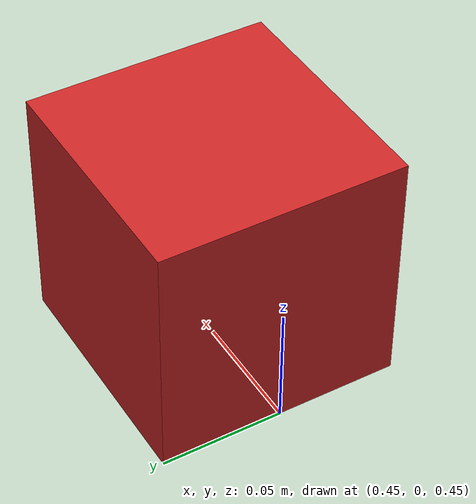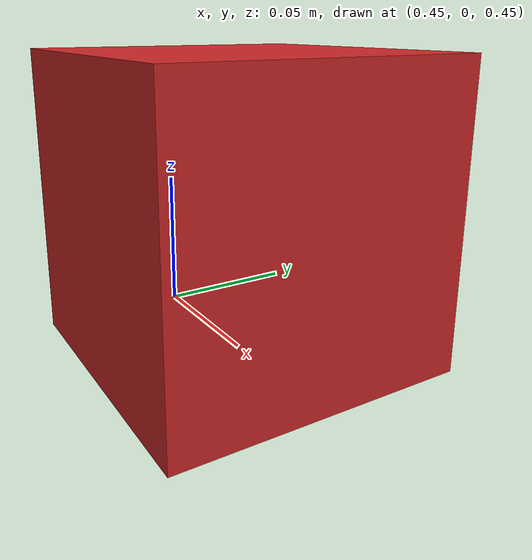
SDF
<?xml version="1.0" ?>
<sdf version="1.6">
  <world name="default">
    <include>
      <uri>model://ground_plane</uri>
    </include>
    <include>
      <uri>model://sun</uri>
    </include>
    <model name="red_cube">
      <pose>0.5 0 0.5 0 0 0</pose>
      <link name="link">
        <collision name="collision">
          <geometry>
            <box>
              <size>0.1 0.1 0.1</size>
            </box>
          </geometry>
        </collision>
        <visual name="visual">
          <geometry>
            <box>
              <size>0.1 0.1 0.1</size>
            </box>
          </geometry>
          <material>
            <script>
              <uri>file://media/materials/scripts/gazebo.material</uri>
              <name>Gazebo/Red</name>
            </script>
          </material>
        </visual>
      </link>
    </model>

    <camera name="top_down_camera">
      <pose>0 0 2 0 1.5707 0</pose>
      <visualize>true</visualize>
      <update_rate>30</update_rate>
      <plugin name="camera_controller" filename="libgazebo_ros_camera.so">
        <alwaysOn>true</alwaysOn>
        <updateRate>0.0</updateRate>
        <cameraName>top_down_camera</cameraName>
        <imageTopicName>image_raw</imageTopicName>
        <cameraInfoTopicName>camera_info</cameraInfoTopicName>
        <frameName>camera_link</frameName>
        <hackBaseline>0.07</hackBaseline>
        <distortionK1>0.0</distortionK1>
        <distortionK2>0.0</distortionK2>
        <distortionK3>0.0</distortionK3>
        <distortionT1>0.0</distortionT1>
        <distortionT2>0.0</distortionT2>
      </plugin>
    </camera>
  </world>
</sdf>
